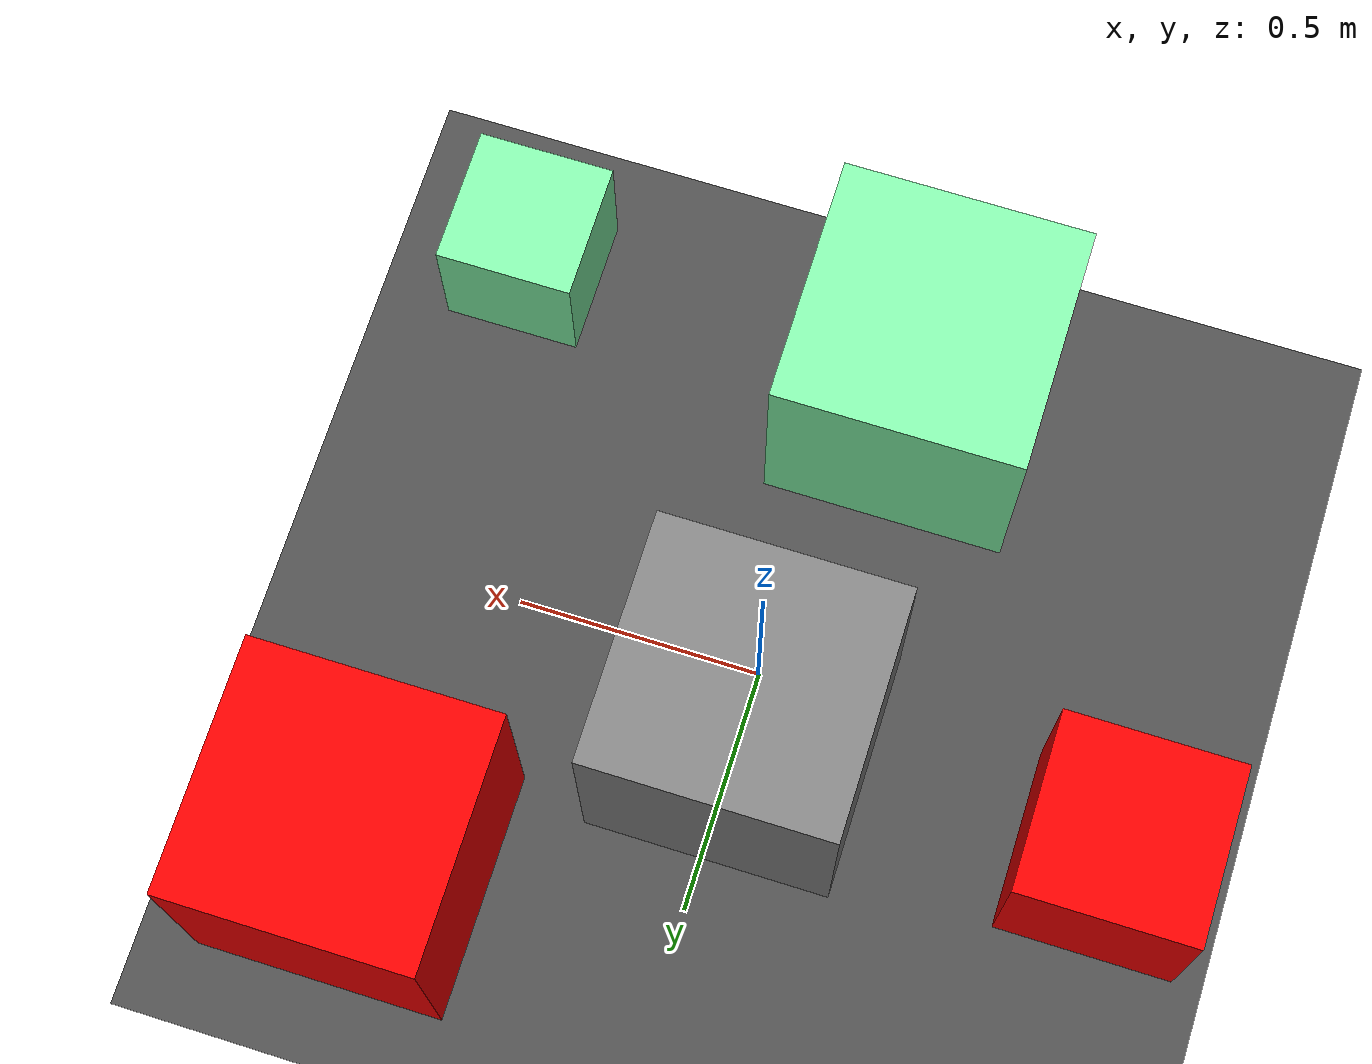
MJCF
<mujoco>
   <asset>
      <texture name="builtin_checker" builtin="checker" type="2d" rgb1="1 1 0" rgb2="0 0 1" width="200" height="200"/>
      <texture name="builtin_gradient" builtin="gradient" rgb1="0 .9 .3" rgb2="1 1 1" width="200" height="200"/>
      <texture name="builtin_flat" builtin="flat" rgb1="1 0 0" rgb2="1 0 0"  width="200" height="200"/>

      <material name="checker_mat" reflectance="0.9" texrepeat="3 3" texture="builtin_checker" texuniform="false" />
      <material name="gradient_mat" reflectance="1" texrepeat="1 1" texture="builtin_gradient" texuniform="true"/>
      <material name="flat_mat" reflectance="1" texrepeat="1 1" texture="builtin_flat" texuniform="true"/>
   </asset>

   <worldbody>
      <light diffuse=".9 .9 .9" pos="0 0 3" dir="0 0 -1"/>
     <geom type="plane" size="1 1 0.1" rgba="0.3 0.3 0.3 1"/>
<body pos="0.71 -0.7 0.14">
<joint type="free"/>
 <geom type="box" size="0.14 0.14 0.14" material="gradient_mat" />
</body>
<body pos="-0.76 0.17 0.18">
<joint type="free"/>
 <geom type="box" size="0.18 0.18 0.18" material="flat_mat" />
</body>
<body pos="-0.01 0.14 0.25">
<joint type="free"/>
 <geom type="box" size="0.25 0.25 0.25" material="checker_mat" />
</body>
<body pos="0.63 0.59 0.25">
<joint type="free"/>
 <geom type="box" size="0.25 0.25 0.25" material="flat_mat" />
</body>
<body pos="-0.14 -0.64 0.25">
<joint type="free"/>
 <geom type="box" size="0.25 0.25 0.25" material="gradient_mat" />
</body><camera euler="60 0 180" fovy="60" name="camera_a" pos="0 -1.5 1"></camera>   </worldbody>
</mujoco>
